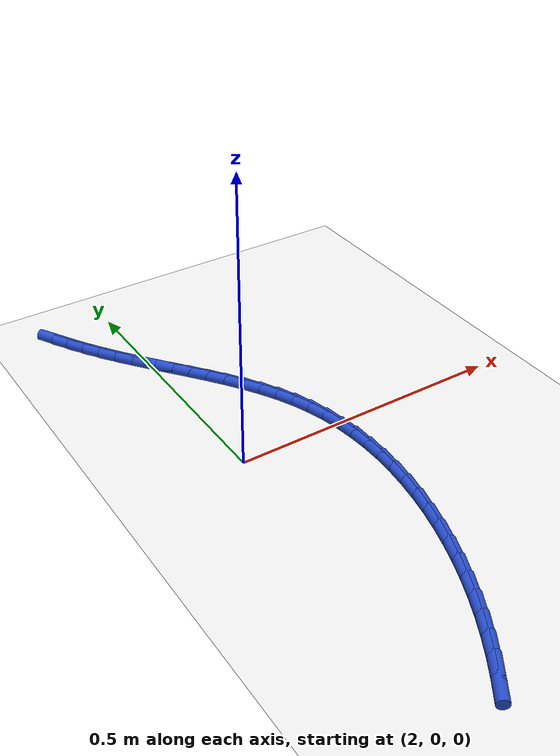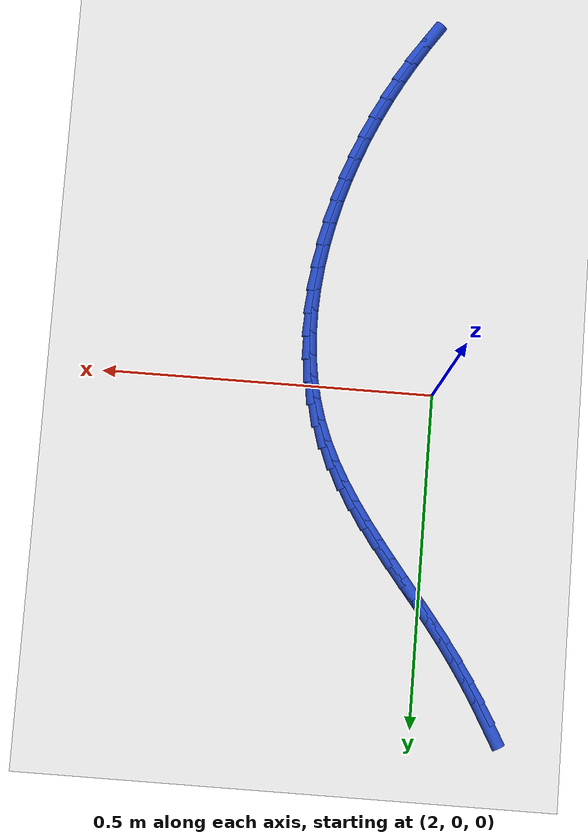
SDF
<sdf version="1.6">
 <world name="default">
  <model name="ground_plane">
   <static>1</static>
   <link name="link">
    <collision name="collision">
     <geometry><plane><normal>0 0 1</normal><size>100 100</size></plane></geometry>
     <surface><friction><ode><mu>100</mu><mu2>50</mu2></ode></friction></surface>
    </collision>
    <visual name="visual">
     <cast_shadows>0</cast_shadows>
     <geometry><plane><normal>0 0 1</normal><size>100 100</size></plane></geometry>
     <material>
      <script><uri>file://media/materials/scripts/gazebo.material</uri><name>Gazebo/WhiteGlow</name></script>
     </material>
    </visual>
   </link>
  </model>
  <model name="line">
   <link name="link_83">
    <pose>1.8883917486542672 0.4810126416043848 0.01 0 1.57 -1.0533581924058348</pose>
    <collision name="collision">
     <geometry><cylinder><radius>0.01</radius><length>0.08</length></cylinder></geometry>
    </collision>
    <visual name="visual">
     <material>
      <script><name>Gazebo/Blue</name><uri>file://media/materials/scripts/gazebo.material</uri></script>
     </material>
     <geometry><cylinder><radius>0.01</radius><length>0.08</length></cylinder></geometry>
    </visual>
   </link>
   <link name="link_84">
    <pose>1.9050749797473985 0.45170088063552605 0.01 0 1.57 -1.020145959338783</pose>
    <collision name="collision">
     <geometry><cylinder><radius>0.01</radius><length>0.08</length></cylinder></geometry>
    </collision>
    <visual name="visual">
     <material>
      <script><name>Gazebo/Blue</name><uri>file://media/materials/scripts/gazebo.material</uri></script>
     </material>
     <geometry><cylinder><radius>0.01</radius><length>0.08</length></cylinder></geometry>
    </visual>
   </link>
   <link name="link_85">
    <pose>1.9227367410908864 0.42293581620585075 0.01 0 1.57 -0.9887805993349301</pose>
    <collision name="collision">
     <geometry><cylinder><radius>0.01</radius><length>0.08</length></cylinder></geometry>
    </collision>
    <visual name="visual">
     <material>
      <script><name>Gazebo/Blue</name><uri>file://media/materials/scripts/gazebo.material</uri></script>
     </material>
     <geometry><cylinder><radius>0.01</radius><length>0.08</length></cylinder></geometry>
    </visual>
   </link>
   <link name="link_86">
    <pose>1.9413551115296102 0.39464270931591416 0.01 0 1.57 -0.9594466336582256</pose>
    <collision name="collision">
     <geometry><cylinder><radius>0.01</radius><length>0.08</length></cylinder></geometry>
    </collision>
    <visual name="visual">
     <material>
      <script><name>Gazebo/Blue</name><uri>file://media/materials/scripts/gazebo.material</uri></script>
     </material>
     <geometry><cylinder><radius>0.01</radius><length>0.08</length></cylinder></geometry>
    </visual>
   </link>
   <link name="link_87">
    <pose>1.9609081699084514 0.36674682096627137 0.01 0 1.57 -0.9328155676720551</pose>
    <collision name="collision">
     <geometry><cylinder><radius>0.01</radius><length>0.08</length></cylinder></geometry>
    </collision>
    <visual name="visual">
     <material>
      <script><name>Gazebo/Blue</name><uri>file://media/materials/scripts/gazebo.material</uri></script>
     </material>
     <geometry><cylinder><radius>0.01</radius><length>0.08</length></cylinder></geometry>
    </visual>
   </link>
   <link name="link_88">
    <pose>1.9813538007127984 0.3391701323690433 0.01 0 1.57 -0.91381064444332</pose>
    <collision name="collision">
     <geometry><cylinder><radius>0.01</radius><length>0.08</length></cylinder></geometry>
    </collision>
    <visual name="visual">
     <material>
      <script><name>Gazebo/Blue</name><uri>file://media/materials/scripts/gazebo.material</uri></script>
     </material>
     <geometry><cylinder><radius>0.01</radius><length>0.08</length></cylinder></geometry>
    </visual>
   </link>
   <link name="link_89">
    <pose>2.0024609662925905 0.31180394168175724 0.01 0 1.57 -0.904842330930881</pose>
    <collision name="collision">
     <geometry><cylinder><radius>0.01</radius><length>0.08</length></cylinder></geometry>
    </collision>
    <visual name="visual">
     <material>
      <script><name>Gazebo/Blue</name><uri>file://media/materials/scripts/gazebo.material</uri></script>
     </material>
     <geometry><cylinder><radius>0.01</radius><length>0.08</length></cylinder></geometry>
    </visual>
   </link>
   <link name="link_90">
    <pose>2.023895480758337 0.28452279464140373 0.01 0 1.57 -0.9057428731022491</pose>
    <collision name="collision">
     <geometry><cylinder><radius>0.01</radius><length>0.08</length></cylinder></geometry>
    </collision>
    <visual name="visual">
     <material>
      <script><name>Gazebo/Blue</name><uri>file://media/materials/scripts/gazebo.material</uri></script>
     </material>
     <geometry><cylinder><radius>0.01</radius><length>0.08</length></cylinder></geometry>
    </visual>
   </link>
   <link name="link_91">
    <pose>2.045322113958217 0.2572010673851647 0.01 0 1.57 -0.9164973213497696</pose>
    <collision name="collision">
     <geometry><cylinder><radius>0.01</radius><length>0.08</length></cylinder></geometry>
    </collision>
    <visual name="visual">
     <material>
      <script><name>Gazebo/Blue</name><uri>file://media/materials/scripts/gazebo.material</uri></script>
     </material>
     <geometry><cylinder><radius>0.01</radius><length>0.08</length></cylinder></geometry>
    </visual>
   </link>
   <link name="link_92">
    <pose>2.066405635740408 0.2297131360502217 0.01 0 1.57 -0.9372670996591267</pose>
    <collision name="collision">
     <geometry><cylinder><radius>0.01</radius><length>0.08</length></cylinder></geometry>
    </collision>
    <visual name="visual">
     <material>
      <script><name>Gazebo/Blue</name><uri>file://media/materials/scripts/gazebo.material</uri></script>
     </material>
     <geometry><cylinder><radius>0.01</radius><length>0.08</length></cylinder></geometry>
    </visual>
   </link>
   <link name="link_93">
    <pose>2.0868108159530894 0.20193337677375645 0.01 0 1.57 -0.9683638800872909</pose>
    <collision name="collision">
     <geometry><cylinder><radius>0.01</radius><length>0.08</length></cylinder></geometry>
    </collision>
    <visual name="visual">
     <material>
      <script><name>Gazebo/Blue</name><uri>file://media/materials/scripts/gazebo.material</uri></script>
     </material>
     <geometry><cylinder><radius>0.01</radius><length>0.08</length></cylinder></geometry>
    </visual>
   </link>
   <link name="link_94">
    <pose>2.1062024244444393 0.17373616569295058 0.01 0 1.57 -1.010194682147026</pose>
    <collision name="collision">
     <geometry><cylinder><radius>0.01</radius><length>0.08</length></cylinder></geometry>
    </collision>
    <visual name="visual">
     <material>
      <script><name>Gazebo/Blue</name><uri>file://media/materials/scripts/gazebo.material</uri></script>
     </material>
     <geometry><cylinder><radius>0.01</radius><length>0.08</length></cylinder></geometry>
    </visual>
   </link>
   <link name="link_95">
    <pose>2.124245231062637 0.1449958789449859 0.01 0 1.57 -1.0631666439190752</pose>
    <collision name="collision">
     <geometry><cylinder><radius>0.01</radius><length>0.08</length></cylinder></geometry>
    </collision>
    <visual name="visual">
     <material>
      <script><name>Gazebo/Blue</name><uri>file://media/materials/scripts/gazebo.material</uri></script>
     </material>
     <geometry><cylinder><radius>0.01</radius><length>0.08</length></cylinder></geometry>
    </visual>
   </link>
   <link name="link_96">
    <pose>2.14060400565586 0.11558689266704428 0.01 0 1.57 -1.1275387173118272</pose>
    <collision name="collision">
     <geometry><cylinder><radius>0.01</radius><length>0.08</length></cylinder></geometry>
    </collision>
    <visual name="visual">
     <material>
      <script><name>Gazebo/Blue</name><uri>file://media/materials/scripts/gazebo.material</uri></script>
     </material>
     <geometry><cylinder><radius>0.01</radius><length>0.08</length></cylinder></geometry>
    </visual>
   </link>
   <link name="link_97">
    <pose>2.1549435180722876 0.08538358299630677 0.01 0 1.57 -1.20314764337611</pose>
    <collision name="collision">
     <geometry><cylinder><radius>0.01</radius><length>0.08</length></cylinder></geometry>
    </collision>
    <visual name="visual">
     <material>
      <script><name>Gazebo/Blue</name><uri>file://media/materials/scripts/gazebo.material</uri></script>
     </material>
     <geometry><cylinder><radius>0.01</radius><length>0.08</length></cylinder></geometry>
    </visual>
   </link>
   <link name="link_98">
    <pose>2.166930518984448 0.054261496257787464 0.01 0 1.57 -1.2841629816000424</pose>
    <collision name="collision">
     <geometry><cylinder><radius>0.01</radius><length>0.08</length></cylinder></geometry>
    </collision>
    <visual name="visual">
     <material>
      <script><name>Gazebo/Blue</name><uri>file://media/materials/scripts/gazebo.material</uri></script>
     </material>
     <geometry><cylinder><radius>0.01</radius><length>0.08</length></cylinder></geometry>
    </visual>
   </link>
   <link name="link_99">
    <pose>2.176384627792064 0.02218648720013154 0.01 0 1.57 -1.3612204963615162</pose>
    <collision name="collision">
     <geometry><cylinder><radius>0.01</radius><length>0.08</length></cylinder></geometry>
    </collision>
    <visual name="visual">
     <material>
      <script><name>Gazebo/Blue</name><uri>file://media/materials/scripts/gazebo.material</uri></script>
     </material>
     <geometry><cylinder><radius>0.01</radius><length>0.08</length></cylinder></geometry>
    </visual>
   </link>
   <link name="link_100">
    <pose>2.183384367704047 -0.010722639931357181 0.01 0 1.57 -1.433346721474617</pose>
    <collision name="collision">
     <geometry><cylinder><radius>0.01</radius><length>0.08</length></cylinder></geometry>
    </collision>
    <visual name="visual">
     <material>
      <script><name>Gazebo/Blue</name><uri>file://media/materials/scripts/gazebo.material</uri></script>
     </material>
     <geometry><cylinder><radius>0.01</radius><length>0.08</length></cylinder></geometry>
    </visual>
   </link>
   <link name="link_101">
    <pose>2.188033313203461 -0.0443322816507415 0.01 0 1.57 -1.5006375937232723</pose>
    <collision name="collision">
     <geometry><cylinder><radius>0.01</radius><length>0.08</length></cylinder></geometry>
    </collision>
    <visual name="visual">
     <material>
      <script><name>Gazebo/Blue</name><uri>file://media/materials/scripts/gazebo.material</uri></script>
     </material>
     <geometry><cylinder><radius>0.01</radius><length>0.08</length></cylinder></geometry>
    </visual>
   </link>
   <link name="link_102">
    <pose>2.1904350387733738 -0.07850883447208443 0.01 0 1.57 -1.5633396269726463</pose>
    <collision name="collision">
     <geometry><cylinder><radius>0.01</radius><length>0.08</length></cylinder></geometry>
    </collision>
    <visual name="visual">
     <material>
      <script><name>Gazebo/Blue</name><uri>file://media/materials/scripts/gazebo.material</uri></script>
     </material>
     <geometry><cylinder><radius>0.01</radius><length>0.08</length></cylinder></geometry>
    </visual>
   </link>
   <link name="link_103">
    <pose>2.190693118896852 -0.1131186949094489 0.01 0 1.57 1.5197946741600914</pose>
    <collision name="collision">
     <geometry><cylinder><radius>0.01</radius><length>0.08</length></cylinder></geometry>
    </collision>
    <visual name="visual">
     <material>
      <script><name>Gazebo/Blue</name><uri>file://media/materials/scripts/gazebo.material</uri></script>
     </material>
     <geometry><cylinder><radius>0.01</radius><length>0.08</length></cylinder></geometry>
    </visual>
   </link>
   <link name="link_104">
    <pose>2.1889111280569598 -0.14802825947689777 0.01 0 1.57 1.4651775162703486</pose>
    <collision name="collision">
     <geometry><cylinder><radius>0.01</radius><length>0.08</length></cylinder></geometry>
    </collision>
    <visual name="visual">
     <material>
      <script><name>Gazebo/Blue</name><uri>file://media/materials/scripts/gazebo.material</uri></script>
     </material>
     <geometry><cylinder><radius>0.01</radius><length>0.08</length></cylinder></geometry>
    </visual>
   </link>
   <link name="link_105">
    <pose>2.1851926407367657 -0.18310392468849407 0.01 0 1.57 1.413971709071513</pose>
    <collision name="collision">
     <geometry><cylinder><radius>0.01</radius><length>0.08</length></cylinder></geometry>
    </collision>
    <visual name="visual">
     <material>
      <script><name>Gazebo/Blue</name><uri>file://media/materials/scripts/gazebo.material</uri></script>
     </material>
     <geometry><cylinder><radius>0.01</radius><length>0.08</length></cylinder></geometry>
    </visual>
   </link>
   <link name="link_106">
    <pose>2.1796412314193345 -0.2182120870583007 0.01 0 1.57 1.3657398896339856</pose>
    <collision name="collision">
     <geometry><cylinder><radius>0.01</radius><length>0.08</length></cylinder></geometry>
    </collision>
    <visual name="visual">
     <material>
      <script><name>Gazebo/Blue</name><uri>file://media/materials/scripts/gazebo.material</uri></script>
     </material>
     <geometry><cylinder><radius>0.01</radius><length>0.08</length></cylinder></geometry>
    </visual>
   </link>
   <link name="link_107">
    <pose>2.1723604745877325 -0.2532191431003805 0.01 0 1.57 1.3200488304360785</pose>
    <collision name="collision">
     <geometry><cylinder><radius>0.01</radius><length>0.08</length></cylinder></geometry>
    </collision>
    <visual name="visual">
     <material>
      <script><name>Gazebo/Blue</name><uri>file://media/materials/scripts/gazebo.material</uri></script>
     </material>
     <geometry><cylinder><radius>0.01</radius><length>0.08</length></cylinder></geometry>
    </visual>
   </link>
   <link name="link_108">
    <pose>2.1634539447250267 -0.28799148932879665 0.01 0 1.57 1.276474873577726</pose>
    <collision name="collision">
     <geometry><cylinder><radius>0.01</radius><length>0.08</length></cylinder></geometry>
    </collision>
    <visual name="visual">
     <material>
      <script><name>Gazebo/Blue</name><uri>file://media/materials/scripts/gazebo.material</uri></script>
     </material>
     <geometry><cylinder><radius>0.01</radius><length>0.08</length></cylinder></geometry>
    </visual>
   </link>
   <link name="link_109">
    <pose>2.153025216314282 -0.3223955222576118 0.01 0 1.57 1.2346047874694868</pose>
    <collision name="collision">
     <geometry><cylinder><radius>0.01</radius><length>0.08</length></cylinder></geometry>
    </collision>
    <visual name="visual">
     <material>
      <script><name>Gazebo/Blue</name><uri>file://media/materials/scripts/gazebo.material</uri></script>
     </material>
     <geometry><cylinder><radius>0.01</radius><length>0.08</length></cylinder></geometry>
    </visual>
   </link>
   <link name="link_110">
    <pose>2.141177863838566 -0.356297638400889 0.01 0 1.57 1.194033261133527</pose>
    <collision name="collision">
     <geometry><cylinder><radius>0.01</radius><length>0.08</length></cylinder></geometry>
    </collision>
    <visual name="visual">
     <material>
      <script><name>Gazebo/Blue</name><uri>file://media/materials/scripts/gazebo.material</uri></script>
     </material>
     <geometry><cylinder><radius>0.01</radius><length>0.08</length></cylinder></geometry>
    </visual>
   </link>
   <link name="link_111">
    <pose>2.128015461780944 -0.3895642342726911 0.01 0 1.57 1.1543578316022773</pose>
    <collision name="collision">
     <geometry><cylinder><radius>0.01</radius><length>0.08</length></cylinder></geometry>
    </collision>
    <visual name="visual">
     <material>
      <script><name>Gazebo/Blue</name><uri>file://media/materials/scripts/gazebo.material</uri></script>
     </material>
     <geometry><cylinder><radius>0.01</radius><length>0.08</length></cylinder></geometry>
    </visual>
   </link>
   <link name="link_112">
    <pose>2.113641584624483 -0.42206170638708107 0.01 0 1.57 1.1151716695490312</pose>
    <collision name="collision">
     <geometry><cylinder><radius>0.01</radius><length>0.08</length></cylinder></geometry>
    </collision>
    <visual name="visual">
     <material>
      <script><name>Gazebo/Blue</name><uri>file://media/materials/scripts/gazebo.material</uri></script>
     </material>
     <geometry><cylinder><radius>0.01</radius><length>0.08</length></cylinder></geometry>
    </visual>
   </link>
   <link name="link_113">
    <pose>2.0981598068522485 -0.45365645125812215 0.01 0 1.57 1.076233718751742</pose>
    <collision name="collision">
     <geometry><cylinder><radius>0.01</radius><length>0.08</length></cylinder></geometry>
    </collision>
    <visual name="visual">
     <material>
      <script><name>Gazebo/Blue</name><uri>file://media/materials/scripts/gazebo.material</uri></script>
     </material>
     <geometry><cylinder><radius>0.01</radius><length>0.08</length></cylinder></geometry>
    </visual>
   </link>
   <link name="link_114">
    <pose>2.081668450769802 -0.4842377277996846 0.01 0 1.57 1.0385584875629874</pose>
    <collision name="collision">
     <geometry><cylinder><radius>0.01</radius><length>0.08</length></cylinder></geometry>
    </collision>
    <visual name="visual">
     <material>
      <script><name>Gazebo/Blue</name><uri>file://media/materials/scripts/gazebo.material</uri></script>
     </material>
     <geometry><cylinder><radius>0.01</radius><length>0.08</length></cylinder></geometry>
    </visual>
   </link>
   <link name="link_115">
    <pose>2.0642309514227803 -0.5138466569835661 0.01 0 1.57 1.0029388872633545</pose>
    <collision name="collision">
     <geometry><cylinder><radius>0.01</radius><length>0.08</length></cylinder></geometry>
    </collision>
    <visual name="visual">
     <material>
      <script><name>Gazebo/Blue</name><uri>file://media/materials/scripts/gazebo.material</uri></script>
     </material>
     <geometry><cylinder><radius>0.01</radius><length>0.08</length></cylinder></geometry>
    </visual>
   </link>
   <link name="link_116">
    <pose>2.045896522641112 -0.5425862638430823 0.01 0 1.57 0.9697137344067065</pose>
    <collision name="collision">
     <geometry><cylinder><radius>0.01</radius><length>0.08</length></cylinder></geometry>
    </collision>
    <visual name="visual">
     <material>
      <script><name>Gazebo/Blue</name><uri>file://media/materials/scripts/gazebo.material</uri></script>
     </material>
     <geometry><cylinder><radius>0.01</radius><length>0.08</length></cylinder></geometry>
    </visual>
   </link>
  </model>
 </world>
</sdf>
